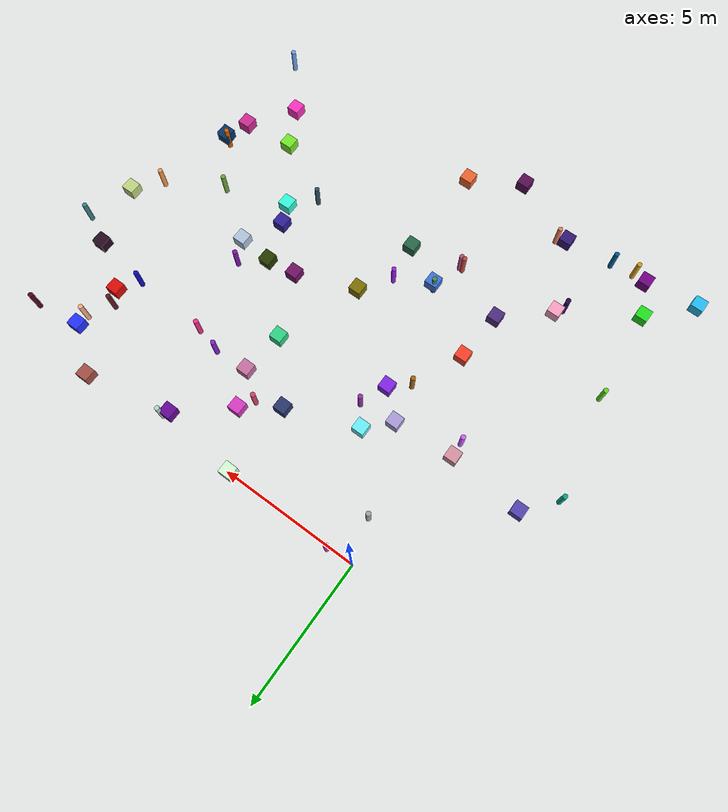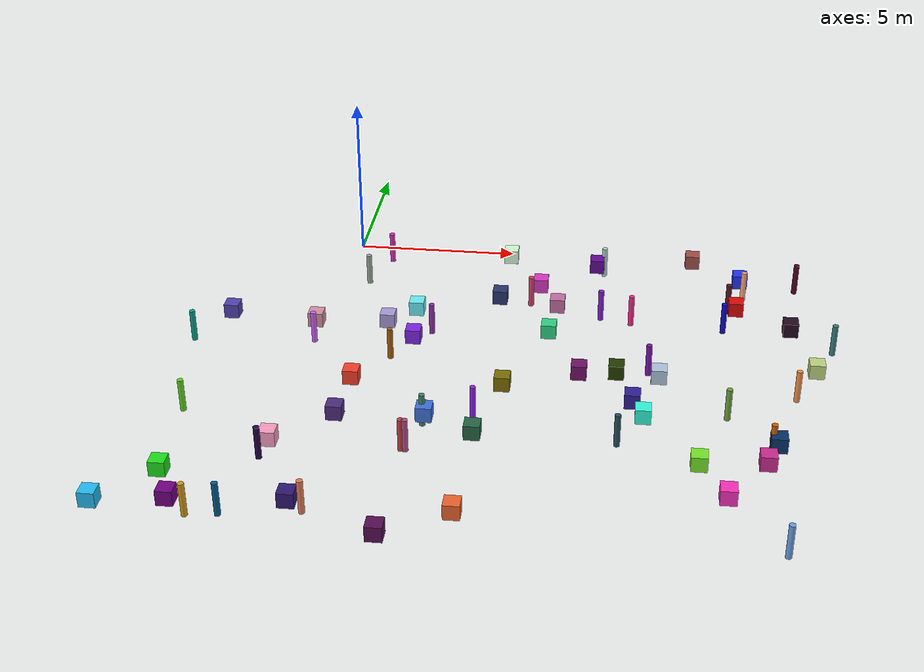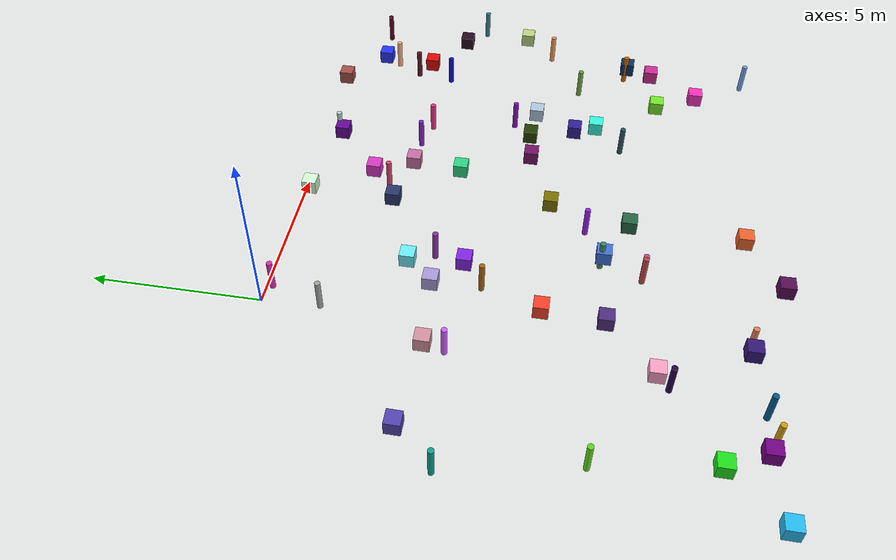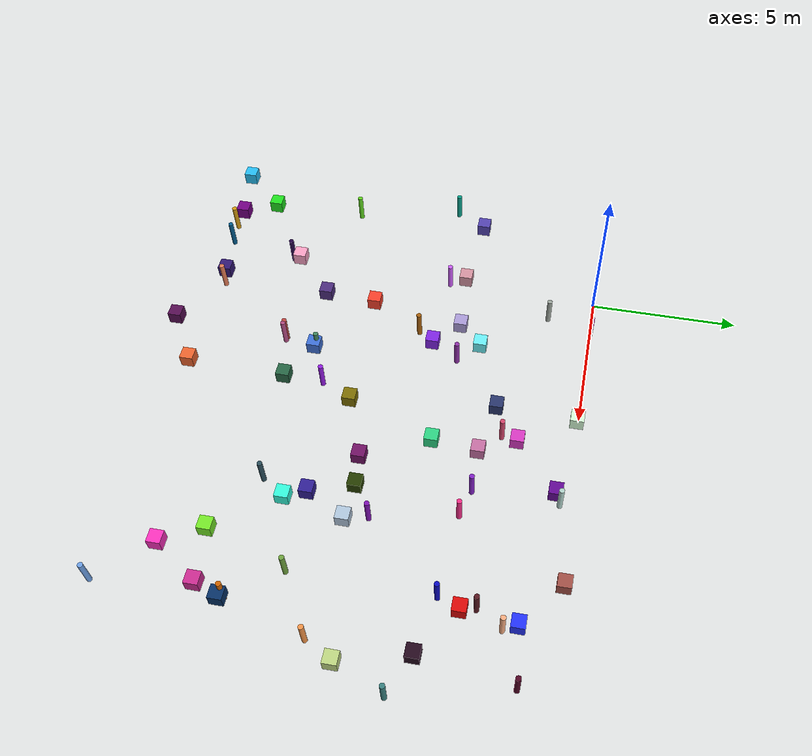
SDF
<sdf version="1.7">
 <world name="warehouse">
  <model name="ground_plane">
   <static>true</static>
   <link name="link">
    <collision name="collision">
     <geometry><plane><normal>0.0 0.0 1</normal><size>1 1</size></plane></geometry>
    </collision>
   </link>
  </model>
  <model name="unit_box_3">
   <static>true</static>
   <pose>10.89 -10.85 0 0 0 0</pose>
   <link name="link">
    <collision name="collision">
     <geometry><box><size>0.450000 0.450000 0.450000</size></box></geometry>
    </collision>
    <visual name="visual">
     <geometry><box><size>0.450000 0.450000 0.450000</size></box></geometry>
     <material>
      <ambient>0.4624867590474331 0.9143126628185029 0.1579698359249163 1</ambient>
      <diffuse>0.4624867590474331 0.9143126628185029 0.1579698359249163 1</diffuse>
      <script><uri>file://media/materials/scripts/gazebo.material</uri><name>Gazebo/RandomColor3</name></script>
     </material>
    </visual>
   </link>
  </model>
  <model name="unit_cylinder_3">
   <static>true</static>
   <pose>14.11 -0.75 0 0 0 0</pose>
   <link name="link">
    <collision name="collision">
     <geometry><cylinder><radius>0.085000</radius><length>1.000000</length></cylinder></geometry>
    </collision>
    <visual name="visual">
     <geometry><cylinder><radius>0.085000</radius><length>1.000000</length></cylinder></geometry>
     <material>
      <ambient>0.31413875885268494 0.01794644405934065 0.1373584163908963 1</ambient>
      <diffuse>0.31413875885268494 0.01794644405934065 0.1373584163908963 1</diffuse>
      <script><uri>file://media/materials/scripts/gazebo.material</uri><name>Gazebo/RandomColor3</name></script>
     </material>
    </visual>
   </link>
  </model>
  <model name="unit_box_9">
   <static>true</static>
   <pose>8.6 -6.69 0 0 0 0</pose>
   <link name="link">
    <collision name="collision">
     <geometry><box><size>0.450000 0.450000 0.450000</size></box></geometry>
    </collision>
    <visual name="visual">
     <geometry><box><size>0.450000 0.450000 0.450000</size></box></geometry>
     <material>
      <ambient>0.14614154093612663 0.23697075493477127 0.0011599974244516087 1</ambient>
      <diffuse>0.14614154093612663 0.23697075493477127 0.0011599974244516087 1</diffuse>
      <script><uri>file://media/materials/scripts/gazebo.material</uri><name>Gazebo/RandomColor9</name></script>
     </material>
    </visual>
   </link>
  </model>
  <model name="unit_box_11">
   <static>true</static>
   <pose>4.73 -13.51 0 0 0 0</pose>
   <link name="link">
    <collision name="collision">
     <geometry><box><size>0.450000 0.450000 0.450000</size></box></geometry>
    </collision>
    <visual name="visual">
     <geometry><box><size>0.450000 0.450000 0.450000</size></box></geometry>
     <material>
      <ambient>0.9340203933268564 0.39520919700550494 0.18268924808897258 1</ambient>
      <diffuse>0.9340203933268564 0.39520919700550494 0.18268924808897258 1</diffuse>
      <script><uri>file://media/materials/scripts/gazebo.material</uri><name>Gazebo/RandomColor11</name></script>
     </material>
    </visual>
   </link>
  </model>
  <model name="unit_box_12">
   <static>true</static>
   <pose>10.86 0.2 0 0 0 0</pose>
   <link name="link">
    <collision name="collision">
     <geometry><box><size>0.450000 0.450000 0.450000</size></box></geometry>
    </collision>
    <visual name="visual">
     <geometry><box><size>0.450000 0.450000 0.450000</size></box></geometry>
     <material>
      <ambient>0.6375677313072791 0.31348500282331193 0.27738088615342893 1</ambient>
      <diffuse>0.6375677313072791 0.31348500282331193 0.27738088615342893 1</diffuse>
      <script><uri>file://media/materials/scripts/gazebo.material</uri><name>Gazebo/RandomColor12</name></script>
     </material>
    </visual>
   </link>
  </model>
  <model name="unit_box_18">
   <static>true</static>
   <pose>4.83 -10.08 0 0 0 0</pose>
   <link name="link">
    <collision name="collision">
     <geometry><box><size>0.450000 0.450000 0.450000</size></box></geometry>
    </collision>
    <visual name="visual">
     <geometry><box><size>0.450000 0.450000 0.450000</size></box></geometry>
     <material>
      <ambient>0.15213708138282123 0.401753758546899 0.2688642279360097 1</ambient>
      <diffuse>0.15213708138282123 0.401753758546899 0.2688642279360097 1</diffuse>
      <script><uri>file://media/materials/scripts/gazebo.material</uri><name>Gazebo/RandomColor18</name></script>
     </material>
    </visual>
   </link>
  </model>
  <model name="unit_cylinder_18">
   <static>true</static>
   <pose>0.88 -13.47 0 0 0 0</pose>
   <link name="link">
    <collision name="collision">
     <geometry><cylinder><radius>0.085000</radius><length>1.000000</length></cylinder></geometry>
    </collision>
    <visual name="visual">
     <geometry><cylinder><radius>0.085000</radius><length>1.000000</length></cylinder></geometry>
     <material>
      <ambient>0.889661844785997 0.4847488373577973 0.3384738342592306 1</ambient>
      <diffuse>0.889661844785997 0.4847488373577973 0.3384738342592306 1</diffuse>
      <script><uri>file://media/materials/scripts/gazebo.material</uri><name>Gazebo/RandomColor18</name></script>
     </material>
    </visual>
   </link>
  </model>
  <model name="unit_box_19">
   <static>true</static>
   <pose>-0.58 -4.69 0 0 0 0</pose>
   <link name="link">
    <collision name="collision">
     <geometry><box><size>0.450000 0.450000 0.450000</size></box></geometry>
    </collision>
    <visual name="visual">
     <geometry><box><size>0.450000 0.450000 0.450000</size></box></geometry>
     <material>
      <ambient>0.8342006538471091 0.5773219657345021 0.6333201078097498 1</ambient>
      <diffuse>0.8342006538471091 0.5773219657345021 0.6333201078097498 1</diffuse>
      <script><uri>file://media/materials/scripts/gazebo.material</uri><name>Gazebo/RandomColor19</name></script>
     </material>
    </visual>
   </link>
  </model>
  <model name="unit_cylinder_19">
   <static>true</static>
   <pose>8.95 -3.3 0 0 0 0</pose>
   <link name="link">
    <collision name="collision">
     <geometry><cylinder><radius>0.085000</radius><length>1.000000</length></cylinder></geometry>
    </collision>
    <visual name="visual">
     <geometry><cylinder><radius>0.085000</radius><length>1.000000</length></cylinder></geometry>
     <material>
      <ambient>0.9456553254621518 0.16936506476351731 0.5296005652481653 1</ambient>
      <diffuse>0.9456553254621518 0.16936506476351731 0.5296005652481653 1</diffuse>
      <script><uri>file://media/materials/scripts/gazebo.material</uri><name>Gazebo/RandomColor19</name></script>
     </material>
    </visual>
   </link>
  </model>
  <model name="unit_box_21">
   <static>true</static>
   <pose>7.79 -0.42 0 0 0 0</pose>
   <link name="link">
    <collision name="collision">
     <geometry><box><size>0.450000 0.450000 0.450000</size></box></geometry>
    </collision>
    <visual name="visual">
     <geometry><box><size>0.450000 0.450000 0.450000</size></box></geometry>
     <material>
      <ambient>0.38801801391914703 0.03405274313850837 0.5868825694169122 1</ambient>
      <diffuse>0.38801801391914703 0.03405274313850837 0.5868825694169122 1</diffuse>
      <script><uri>file://media/materials/scripts/gazebo.material</uri><name>Gazebo/RandomColor21</name></script>
     </material>
    </visual>
   </link>
  </model>
  <model name="unit_box_23">
   <static>true</static>
   <pose>-3.25 -4.45 0 0 0 0</pose>
   <link name="link">
    <collision name="collision">
     <geometry><box><size>0.450000 0.450000 0.450000</size></box></geometry>
    </collision>
    <visual name="visual">
     <geometry><box><size>0.450000 0.450000 0.450000</size></box></geometry>
     <material>
      <ambient>0.326988515492164 0.266446417908078 0.6975832602943213 1</ambient>
      <diffuse>0.326988515492164 0.266446417908078 0.6975832602943213 1</diffuse>
      <script><uri>file://media/materials/scripts/gazebo.material</uri><name>Gazebo/RandomColor23</name></script>
     </material>
    </visual>
   </link>
  </model>
  <model name="unit_cylinder_24">
   <static>true</static>
   <pose>-2.04 -13.9 0 0 0 0</pose>
   <link name="link">
    <collision name="collision">
     <geometry><cylinder><radius>0.085000</radius><length>1.000000</length></cylinder></geometry>
    </collision>
    <visual name="visual">
     <geometry><cylinder><radius>0.085000</radius><length>1.000000</length></cylinder></geometry>
     <material>
      <ambient>0.8292453268627052 0.6054682728197773 0.07312862907861306 1</ambient>
      <diffuse>0.8292453268627052 0.6054682728197773 0.07312862907861306 1</diffuse>
      <script><uri>file://media/materials/scripts/gazebo.material</uri><name>Gazebo/RandomColor24</name></script>
     </material>
    </visual>
   </link>
  </model>
  <model name="unit_box_25">
   <static>true</static>
   <pose>12.15 -2.73 0 0 0 0</pose>
   <link name="link">
    <collision name="collision">
     <geometry><box><size>0.450000 0.450000 0.450000</size></box></geometry>
    </collision>
    <visual name="visual">
     <geometry><box><size>0.450000 0.450000 0.450000</size></box></geometry>
     <material>
      <ambient>0.8692494964949719 0.03779436172145079 0.03194965988478493 1</ambient>
      <diffuse>0.8692494964949719 0.03779436172145079 0.03194965988478493 1</diffuse>
      <script><uri>file://media/materials/scripts/gazebo.material</uri><name>Gazebo/RandomColor25</name></script>
     </material>
    </visual>
   </link>
  </model>
  <model name="unit_cylinder_25">
   <static>true</static>
   <pose>0.48 -1.52 0 0 0 0</pose>
   <link name="link">
    <collision name="collision">
     <geometry><cylinder><radius>0.085000</radius><length>1.000000</length></cylinder></geometry>
    </collision>
    <visual name="visual">
     <geometry><cylinder><radius>0.085000</radius><length>1.000000</length></cylinder></geometry>
     <material>
      <ambient>0.6107865553815773 0.6437235294481034 0.6124658333225681 1</ambient>
      <diffuse>0.6107865553815773 0.6437235294481034 0.6124658333225681 1</diffuse>
      <script><uri>file://media/materials/scripts/gazebo.material</uri><name>Gazebo/RandomColor25</name></script>
     </material>
    </visual>
   </link>
  </model>
  <model name="unit_cylinder_26">
   <static>true</static>
   <pose>14.97 -4.39 0 0 0 0</pose>
   <link name="link">
    <collision name="collision">
     <geometry><cylinder><radius>0.085000</radius><length>1.000000</length></cylinder></geometry>
    </collision>
    <visual name="visual">
     <geometry><cylinder><radius>0.085000</radius><length>1.000000</length></cylinder></geometry>
     <material>
      <ambient>0.21813894036833092 0.5031524766580354 0.49754303737141214 1</ambient>
      <diffuse>0.21813894036833092 0.5031524766580354 0.49754303737141214 1</diffuse>
      <script><uri>file://media/materials/scripts/gazebo.material</uri><name>Gazebo/RandomColor26</name></script>
     </material>
    </visual>
   </link>
  </model>
  <model name="unit_box_27">
   <static>true</static>
   <pose>4.96 -0.04 0 0 0 0</pose>
   <link name="link">
    <collision name="collision">
     <geometry><box><size>0.450000 0.450000 0.450000</size></box></geometry>
    </collision>
    <visual name="visual">
     <geometry><box><size>0.450000 0.450000 0.450000</size></box></geometry>
     <material>
      <ambient>0.8486869016865819 0.9941956500694433 0.852067054914752 1</ambient>
      <diffuse>0.8486869016865819 0.9941956500694433 0.852067054914752 1</diffuse>
      <script><uri>file://media/materials/scripts/gazebo.material</uri><name>Gazebo/RandomColor27</name></script>
     </material>
    </visual>
   </link>
  </model>
  <model name="unit_cylinder_27">
   <static>true</static>
   <pose>8.01 -3.06 0 0 0 0</pose>
   <link name="link">
    <collision name="collision">
     <geometry><cylinder><radius>0.085000</radius><length>1.000000</length></cylinder></geometry>
    </collision>
    <visual name="visual">
     <geometry><cylinder><radius>0.085000</radius><length>1.000000</length></cylinder></geometry>
     <material>
      <ambient>0.5099441863754836 0.1291536698231901 0.7783231246136362 1</ambient>
      <diffuse>0.5099441863754836 0.1291536698231901 0.7783231246136362 1</diffuse>
      <script><uri>file://media/materials/scripts/gazebo.material</uri><name>Gazebo/RandomColor27</name></script>
     </material>
    </visual>
   </link>
  </model>
  <model name="unit_box_28">
   <static>true</static>
   <pose>13.02 -9.8 0 0 0 0</pose>
   <link name="link">
    <collision name="collision">
     <geometry><box><size>0.450000 0.450000 0.450000</size></box></geometry>
    </collision>
    <visual name="visual">
     <geometry><box><size>0.450000 0.450000 0.450000</size></box></geometry>
     <material>
      <ambient>0.02478765518445203 0.19437383636729533 0.4042443228060443 1</ambient>
      <diffuse>0.02478765518445203 0.19437383636729533 0.4042443228060443 1</diffuse>
      <script><uri>file://media/materials/scripts/gazebo.material</uri><name>Gazebo/RandomColor28</name></script>
     </material>
    </visual>
   </link>
  </model>
  <model name="unit_cylinder_32">
   <static>true</static>
   <pose>-3.43 -9.31 0 0 0 0</pose>
   <link name="link">
    <collision name="collision">
     <geometry><cylinder><radius>0.085000</radius><length>1.000000</length></cylinder></geometry>
    </collision>
    <visual name="visual">
     <geometry><cylinder><radius>0.085000</radius><length>1.000000</length></cylinder></geometry>
     <material>
      <ambient>0.3721312846937974 0.8366255710289031 0.12252694481777004 1</ambient>
      <diffuse>0.3721312846937974 0.8366255710289031 0.12252694481777004 1</diffuse>
      <script><uri>file://media/materials/scripts/gazebo.material</uri><name>Gazebo/RandomColor32</name></script>
     </material>
    </visual>
   </link>
  </model>
  <model name="unit_cylinder_33">
   <static>true</static>
   <pose>8.02 -0.24 0 0 0 0</pose>
   <link name="link">
    <collision name="collision">
     <geometry><cylinder><radius>0.085000</radius><length>1.000000</length></cylinder></geometry>
    </collision>
    <visual name="visual">
     <geometry><cylinder><radius>0.085000</radius><length>1.000000</length></cylinder></geometry>
     <material>
      <ambient>0.6910647032823861 0.826248076338902 0.796120389499575 1</ambient>
      <diffuse>0.6910647032823861 0.826248076338902 0.796120389499575 1</diffuse>
      <script><uri>file://media/materials/scripts/gazebo.material</uri><name>Gazebo/RandomColor33</name></script>
     </material>
    </visual>
   </link>
  </model>
  <model name="unit_box_36">
   <static>true</static>
   <pose>-0.57 -10.94 0 0 0 0</pose>
   <link name="link">
    <collision name="collision">
     <geometry><box><size>0.450000 0.450000 0.450000</size></box></geometry>
    </collision>
    <visual name="visual">
     <geometry><box><size>0.450000 0.450000 0.450000</size></box></geometry>
     <material>
      <ambient>0.9824571224320596 0.6335572762247712 0.7729079614466159 1</ambient>
      <diffuse>0.9824571224320596 0.6335572762247712 0.7729079614466159 1</diffuse>
      <script><uri>file://media/materials/scripts/gazebo.material</uri><name>Gazebo/RandomColor36</name></script>
     </material>
    </visual>
   </link>
  </model>
  <model name="unit_cylinder_36">
   <static>true</static>
   <pose>8.72 -9.72 0 0 0 0</pose>
   <link name="link">
    <collision name="collision">
     <geometry><cylinder><radius>0.085000</radius><length>1.000000</length></cylinder></geometry>
    </collision>
    <visual name="visual">
     <geometry><cylinder><radius>0.085000</radius><length>1.000000</length></cylinder></geometry>
     <material>
      <ambient>0.1672943437410489 0.3047983494194332 0.3580818258632714 1</ambient>
      <diffuse>0.1672943437410489 0.3047983494194332 0.3580818258632714 1</diffuse>
      <script><uri>file://media/materials/scripts/gazebo.material</uri><name>Gazebo/RandomColor36</name></script>
     </material>
    </visual>
   </link>
  </model>
  <model name="unit_cylinder_37">
   <static>true</static>
   <pose>3.35 -9.31 0 0 0 0</pose>
   <link name="link">
    <collision name="collision">
     <geometry><cylinder><radius>0.085000</radius><length>1.000000</length></cylinder></geometry>
    </collision>
    <visual name="visual">
     <geometry><cylinder><radius>0.085000</radius><length>1.000000</length></cylinder></geometry>
     <material>
      <ambient>0.25792876844707446 0.5261192219596559 0.3764692068972195 1</ambient>
      <diffuse>0.25792876844707446 0.5261192219596559 0.3764692068972195 1</diffuse>
      <script><uri>file://media/materials/scripts/gazebo.material</uri><name>Gazebo/RandomColor37</name></script>
     </material>
    </visual>
   </link>
  </model>
  <model name="unit_box_38">
   <static>true</static>
   <pose>12.34 -0.97 0 0 0 0</pose>
   <link name="link">
    <collision name="collision">
     <geometry><box><size>0.450000 0.450000 0.450000</size></box></geometry>
    </collision>
    <visual name="visual">
     <geometry><box><size>0.450000 0.450000 0.450000</size></box></geometry>
     <material>
      <ambient>0.13967602627044629 0.1998036602836053 0.9813920763062978 1</ambient>
      <diffuse>0.13967602627044629 0.1998036602836053 0.9813920763062978 1</diffuse>
      <script><uri>file://media/materials/scripts/gazebo.material</uri><name>Gazebo/RandomColor38</name></script>
     </material>
    </visual>
   </link>
  </model>
  <model name="unit_box_40">
   <static>true</static>
   <pose>-2.52 -13.72 0 0 0 0</pose>
   <link name="link">
    <collision name="collision">
     <geometry><box><size>0.450000 0.450000 0.450000</size></box></geometry>
    </collision>
    <visual name="visual">
     <geometry><box><size>0.450000 0.450000 0.450000</size></box></geometry>
     <material>
      <ambient>0.4502754782213523 0.0033203426167386363 0.5173502991902056 1</ambient>
      <diffuse>0.4502754782213523 0.0033203426167386363 0.5173502991902056 1</diffuse>
      <script><uri>file://media/materials/scripts/gazebo.material</uri><name>Gazebo/RandomColor40</name></script>
     </material>
    </visual>
   </link>
  </model>
  <model name="unit_cylinder_41">
   <static>true</static>
   <pose>-0.77 -11.31 0 0 0 0</pose>
   <link name="link">
    <collision name="collision">
     <geometry><cylinder><radius>0.085000</radius><length>1.000000</length></cylinder></geometry>
    </collision>
    <visual name="visual">
     <geometry><cylinder><radius>0.085000</radius><length>1.000000</length></cylinder></geometry>
     <material>
      <ambient>0.14159386115270722 0.01658253002968091 0.2713492972556275 1</ambient>
      <diffuse>0.14159386115270722 0.01658253002968091 0.2713492972556275 1</diffuse>
      <script><uri>file://media/materials/scripts/gazebo.material</uri><name>Gazebo/RandomColor41</name></script>
     </material>
    </visual>
   </link>
  </model>
  <model name="unit_box_43">
   <static>true</static>
   <pose>2.51 -5.36 0 0 0 0</pose>
   <link name="link">
    <collision name="collision">
     <geometry><box><size>0.450000 0.450000 0.450000</size></box></geometry>
    </collision>
    <visual name="visual">
     <geometry><box><size>0.450000 0.450000 0.450000</size></box></geometry>
     <material>
      <ambient>0.5015578921740694 0.14324663315828345 0.8948822264542908 1</ambient>
      <diffuse>0.5015578921740694 0.14324663315828345 0.8948822264542908 1</diffuse>
      <script><uri>file://media/materials/scripts/gazebo.material</uri><name>Gazebo/RandomColor43</name></script>
     </material>
    </visual>
   </link>
  </model>
  <model name="unit_cylinder_48">
   <static>true</static>
   <pose>3.07 -10.56 0 0 0 0</pose>
   <link name="link">
    <collision name="collision">
     <geometry><cylinder><radius>0.085000</radius><length>1.000000</length></cylinder></geometry>
    </collision>
    <visual name="visual">
     <geometry><cylinder><radius>0.085000</radius><length>1.000000</length></cylinder></geometry>
     <material>
      <ambient>0.7165557844969643 0.30511352326934704 0.5255030786230381 1</ambient>
      <diffuse>0.7165557844969643 0.30511352326934704 0.5255030786230381 1</diffuse>
      <script><uri>file://media/materials/scripts/gazebo.material</uri><name>Gazebo/RandomColor48</name></script>
     </material>
    </visual>
   </link>
  </model>
  <model name="unit_cylinder_49">
   <static>true</static>
   <pose>4.69 -8.79 0 0 0 0</pose>
   <link name="link">
    <collision name="collision">
     <geometry><cylinder><radius>0.085000</radius><length>1.000000</length></cylinder></geometry>
    </collision>
    <visual name="visual">
     <geometry><cylinder><radius>0.085000</radius><length>1.000000</length></cylinder></geometry>
     <material>
      <ambient>0.5787438655736662 0.10529384782344009 0.8914933726062343 1</ambient>
      <diffuse>0.5787438655736662 0.10529384782344009 0.8914933726062343 1</diffuse>
      <script><uri>file://media/materials/scripts/gazebo.material</uri><name>Gazebo/RandomColor49</name></script>
     </material>
    </visual>
   </link>
  </model>
  <model name="unit_box_50">
   <static>true</static>
   <pose>2.96 -14.55 0 0 0 0</pose>
   <link name="link">
    <collision name="collision">
     <geometry><box><size>0.450000 0.450000 0.450000</size></box></geometry>
    </collision>
    <visual name="visual">
     <geometry><box><size>0.450000 0.450000 0.450000</size></box></geometry>
     <material>
      <ambient>0.3371124151774617 0.0513314948140402 0.32470020432977176 1</ambient>
      <diffuse>0.3371124151774617 0.0513314948140402 0.32470020432977176 1</diffuse>
      <script><uri>file://media/materials/scripts/gazebo.material</uri><name>Gazebo/RandomColor50</name></script>
     </material>
    </visual>
   </link>
  </model>
  <model name="unit_box_51">
   <static>true</static>
   <pose>6.51 -4.64 0 0 0 0</pose>
   <link name="link">
    <collision name="collision">
     <geometry><box><size>0.450000 0.450000 0.450000</size></box></geometry>
    </collision>
    <visual name="visual">
     <geometry><box><size>0.450000 0.450000 0.450000</size></box></geometry>
     <material>
      <ambient>0.18061662655388233 0.8325592641645059 0.5192181855071093 1</ambient>
      <diffuse>0.18061662655388233 0.8325592641645059 0.5192181855071093 1</diffuse>
      <script><uri>file://media/materials/scripts/gazebo.material</uri><name>Gazebo/RandomColor51</name></script>
     </material>
    </visual>
   </link>
  </model>
  <model name="unit_cylinder_52">
   <static>true</static>
   <pose>-4.18 -5.57 0 0 0 0</pose>
   <link name="link">
    <collision name="collision">
     <geometry><cylinder><radius>0.085000</radius><length>1.000000</length></cylinder></geometry>
    </collision>
    <visual name="visual">
     <geometry><cylinder><radius>0.085000</radius><length>1.000000</length></cylinder></geometry>
     <material>
      <ambient>0.033597266219691724 0.6304464659484251 0.5472023994982452 1</ambient>
      <diffuse>0.033597266219691724 0.6304464659484251 0.5472023994982452 1</diffuse>
      <script><uri>file://media/materials/scripts/gazebo.material</uri><name>Gazebo/RandomColor52</name></script>
     </material>
    </visual>
   </link>
  </model>
  <model name="unit_box_53">
   <static>true</static>
   <pose>14.33 -6.03 0 0 0 0</pose>
   <link name="link">
    <collision name="collision">
     <geometry><box><size>0.450000 0.450000 0.450000</size></box></geometry>
    </collision>
    <visual name="visual">
     <geometry><box><size>0.450000 0.450000 0.450000</size></box></geometry>
     <material>
      <ambient>0.7475359441316373 0.8382611114257045 0.5108983686616976 1</ambient>
      <diffuse>0.7475359441316373 0.8382611114257045 0.5108983686616976 1</diffuse>
      <script><uri>file://media/materials/scripts/gazebo.material</uri><name>Gazebo/RandomColor53</name></script>
     </material>
    </visual>
   </link>
  </model>
  <model name="unit_cylinder_53">
   <static>true</static>
   <pose>1.9 -5.96 0 0 0 0</pose>
   <link name="link">
    <collision name="collision">
     <geometry><cylinder><radius>0.085000</radius><length>1.000000</length></cylinder></geometry>
    </collision>
    <visual name="visual">
     <geometry><cylinder><radius>0.085000</radius><length>1.000000</length></cylinder></geometry>
     <material>
      <ambient>0.6596777940997097 0.37998833407143984 0.054840331518383856 1</ambient>
      <diffuse>0.6596777940997097 0.37998833407143984 0.054840331518383856 1</diffuse>
      <script><uri>file://media/materials/scripts/gazebo.material</uri><name>Gazebo/RandomColor53</name></script>
     </material>
    </visual>
   </link>
  </model>
  <model name="unit_box_54">
   <static>true</static>
   <pose>-4.44 -13.99 0 0 0 0</pose>
   <link name="link">
    <collision name="collision">
     <geometry><box><size>0.450000 0.450000 0.450000</size></box></geometry>
    </collision>
    <visual name="visual">
     <geometry><box><size>0.450000 0.450000 0.450000</size></box></geometry>
     <material>
      <ambient>0.14646887676916664 0.746029174657591 0.9581812266760893 1</ambient>
      <diffuse>0.14646887676916664 0.746029174657591 0.9581812266760893 1</diffuse>
      <script><uri>file://media/materials/scripts/gazebo.material</uri><name>Gazebo/RandomColor54</name></script>
     </material>
    </visual>
   </link>
  </model>
  <model name="unit_cylinder_54">
   <static>true</static>
   <pose>-0.54 -5.28 0 0 0 0</pose>
   <link name="link">
    <collision name="collision">
     <geometry><cylinder><radius>0.085000</radius><length>1.000000</length></cylinder></geometry>
    </collision>
    <visual name="visual">
     <geometry><cylinder><radius>0.085000</radius><length>1.000000</length></cylinder></geometry>
     <material>
      <ambient>0.8172856834327115 0.3693135878926658 0.9974124948187749 1</ambient>
      <diffuse>0.8172856834327115 0.3693135878926658 0.9974124948187749 1</diffuse>
      <script><uri>file://media/materials/scripts/gazebo.material</uri><name>Gazebo/RandomColor54</name></script>
     </material>
    </visual>
   </link>
  </model>
  <model name="unit_cylinder_55">
   <static>true</static>
   <pose>5.8 -2.42 0 0 0 0</pose>
   <link name="link">
    <collision name="collision">
     <geometry><cylinder><radius>0.085000</radius><length>1.000000</length></cylinder></geometry>
    </collision>
    <visual name="visual">
     <geometry><cylinder><radius>0.085000</radius><length>1.000000</length></cylinder></geometry>
     <material>
      <ambient>0.8271443065869968 0.26311148277164165 0.4162998289364659 1</ambient>
      <diffuse>0.8271443065869968 0.26311148277164165 0.4162998289364659 1</diffuse>
      <script><uri>file://media/materials/scripts/gazebo.material</uri><name>Gazebo/RandomColor55</name></script>
     </material>
    </visual>
   </link>
  </model>
  <model name="unit_cylinder_56">
   <static>true</static>
   <pose>9.52 -6.08 0 0 0 0</pose>
   <link name="link">
    <collision name="collision">
     <geometry><cylinder><radius>0.085000</radius><length>1.000000</length></cylinder></geometry>
    </collision>
    <visual name="visual">
     <geometry><cylinder><radius>0.085000</radius><length>1.000000</length></cylinder></geometry>
     <material>
      <ambient>0.49618592110400916 0.07093142319876 0.7012748725010843 1</ambient>
      <diffuse>0.49618592110400916 0.07093142319876 0.7012748725010843 1</diffuse>
      <script><uri>file://media/materials/scripts/gazebo.material</uri><name>Gazebo/RandomColor56</name></script>
     </material>
    </visual>
   </link>
  </model>
  <model name="unit_box_57">
   <static>true</static>
   <pose>5.4 -7.64 0 0 0 0</pose>
   <link name="link">
    <collision name="collision">
     <geometry><box><size>0.450000 0.450000 0.450000</size></box></geometry>
    </collision>
    <visual name="visual">
     <geometry><box><size>0.450000 0.450000 0.450000</size></box></geometry>
     <material>
      <ambient>0.49484015422541605 0.4392646393046623 0.015599898815628954 1</ambient>
      <diffuse>0.49484015422541605 0.4392646393046623 0.015599898815628954 1</diffuse>
      <script><uri>file://media/materials/scripts/gazebo.material</uri><name>Gazebo/RandomColor57</name></script>
     </material>
    </visual>
   </link>
  </model>
  <model name="unit_cylinder_58">
   <static>true</static>
   <pose>13.73 -7.02 0 0 0 0</pose>
   <link name="link">
    <collision name="collision">
     <geometry><cylinder><radius>0.085000</radius><length>1.000000</length></cylinder></geometry>
    </collision>
    <visual name="visual">
     <geometry><cylinder><radius>0.085000</radius><length>1.000000</length></cylinder></geometry>
     <material>
      <ambient>0.9464264906110739 0.576431048724635 0.2789632797133764 1</ambient>
      <diffuse>0.9464264906110739 0.576431048724635 0.2789632797133764 1</diffuse>
      <script><uri>file://media/materials/scripts/gazebo.material</uri><name>Gazebo/RandomColor58</name></script>
     </material>
    </visual>
   </link>
  </model>
  <model name="unit_box_59">
   <static>true</static>
   <pose>1.08 -7.74 0 0 0 0</pose>
   <link name="link">
    <collision name="collision">
     <geometry><box><size>0.450000 0.450000 0.450000</size></box></geometry>
    </collision>
    <visual name="visual">
     <geometry><box><size>0.450000 0.450000 0.450000</size></box></geometry>
     <material>
      <ambient>0.9721848871084022 0.2533672088179345 0.16507847031934642 1</ambient>
      <diffuse>0.9721848871084022 0.2533672088179345 0.16507847031934642 1</diffuse>
      <script><uri>file://media/materials/scripts/gazebo.material</uri><name>Gazebo/RandomColor59</name></script>
     </material>
    </visual>
   </link>
  </model>
  <model name="unit_cylinder_60">
   <static>true</static>
   <pose>-1.21 -13.79 0 0 0 0</pose>
   <link name="link">
    <collision name="collision">
     <geometry><cylinder><radius>0.085000</radius><length>1.000000</length></cylinder></geometry>
    </collision>
    <visual name="visual">
     <geometry><cylinder><radius>0.085000</radius><length>1.000000</length></cylinder></geometry>
     <material>
      <ambient>0.004367440206406448 0.35536976987313973 0.5529063385733172 1</ambient>
      <diffuse>0.004367440206406448 0.35536976987313973 0.5529063385733172 1</diffuse>
      <script><uri>file://media/materials/scripts/gazebo.material</uri><name>Gazebo/RandomColor60</name></script>
     </material>
    </visual>
   </link>
  </model>
  <model name="unit_box_63">
   <static>true</static>
   <pose>0.96 -9.55 0 0 0 0</pose>
   <link name="link">
    <collision name="collision">
     <geometry><box><size>0.450000 0.450000 0.450000</size></box></geometry>
    </collision>
    <visual name="visual">
     <geometry><box><size>0.450000 0.450000 0.450000</size></box></geometry>
     <material>
      <ambient>0.3002461166697413 0.17727362422313997 0.4942248483692083 1</ambient>
      <diffuse>0.3002461166697413 0.17727362422313997 0.4942248483692083 1</diffuse>
      <script><uri>file://media/materials/scripts/gazebo.material</uri><name>Gazebo/RandomColor63</name></script>
     </material>
    </visual>
   </link>
  </model>
  <model name="unit_box_64">
   <static>true</static>
   <pose>12.69 -10.64 0 0 0 0</pose>
   <link name="link">
    <collision name="collision">
     <geometry><box><size>0.450000 0.450000 0.450000</size></box></geometry>
    </collision>
    <visual name="visual">
     <geometry><box><size>0.450000 0.450000 0.450000</size></box></geometry>
     <material>
      <ambient>0.8027406423183407 0.17041894028340487 0.5740614320246962 1</ambient>
      <diffuse>0.8027406423183407 0.17041894028340487 0.5740614320246962 1</diffuse>
      <script><uri>file://media/materials/scripts/gazebo.material</uri><name>Gazebo/RandomColor64</name></script>
     </material>
    </visual>
   </link>
  </model>
  <model name="unit_cylinder_65">
   <static>true</static>
   <pose>12.44 -1.42 0 0 0 0</pose>
   <link name="link">
    <collision name="collision">
     <geometry><cylinder><radius>0.085000</radius><length>1.000000</length></cylinder></geometry>
    </collision>
    <visual name="visual">
     <geometry><cylinder><radius>0.085000</radius><length>1.000000</length></cylinder></geometry>
     <material>
      <ambient>0.9664668887663515 0.6787775662655414 0.5067513130163374 1</ambient>
      <diffuse>0.9664668887663515 0.6787775662655414 0.5067513130163374 1</diffuse>
      <script><uri>file://media/materials/scripts/gazebo.material</uri><name>Gazebo/RandomColor65</name></script>
     </material>
    </visual>
   </link>
  </model>
  <model name="unit_cylinder_66">
   <static>true</static>
   <pose>0.98 0.03 0 0 0 0</pose>
   <link name="link">
    <collision name="collision">
     <geometry><cylinder><radius>0.085000</radius><length>1.000000</length></cylinder></geometry>
    </collision>
    <visual name="visual">
     <geometry><cylinder><radius>0.085000</radius><length>1.000000</length></cylinder></geometry>
     <material>
      <ambient>0.87522183348222 0.17262806162035427 0.7036432312220136 1</ambient>
      <diffuse>0.87522183348222 0.17262806162035427 0.7036432312220136 1</diffuse>
      <script><uri>file://media/materials/scripts/gazebo.material</uri><name>Gazebo/RandomColor66</name></script>
     </material>
    </visual>
   </link>
  </model>
  <model name="unit_box_68">
   <static>true</static>
   <pose>4.86 -2.75 0 0 0 0</pose>
   <link name="link">
    <collision name="collision">
     <geometry><box><size>0.450000 0.450000 0.450000</size></box></geometry>
    </collision>
    <visual name="visual">
     <geometry><box><size>0.450000 0.450000 0.450000</size></box></geometry>
     <material>
      <ambient>0.16212415159612414 0.21237588160571574 0.42612387500757387 1</ambient>
      <diffuse>0.16212415159612414 0.21237588160571574 0.42612387500757387 1</diffuse>
      <script><uri>file://media/materials/scripts/gazebo.material</uri><name>Gazebo/RandomColor68</name></script>
     </material>
    </visual>
   </link>
  </model>
  <model name="unit_box_70">
   <static>true</static>
   <pose>3.42 -9.38 0 0 0 0</pose>
   <link name="link">
    <collision name="collision">
     <geometry><box><size>0.450000 0.450000 0.450000</size></box></geometry>
    </collision>
    <visual name="visual">
     <geometry><box><size>0.450000 0.450000 0.450000</size></box></geometry>
     <material>
      <ambient>0.24564751440326682 0.44712101440158525 0.8482914474760771 1</ambient>
      <diffuse>0.24564751440326682 0.44712101440158525 0.8482914474760771 1</diffuse>
      <script><uri>file://media/materials/scripts/gazebo.material</uri><name>Gazebo/RandomColor70</name></script>
     </material>
    </visual>
   </link>
  </model>
  <model name="unit_box_71">
   <static>true</static>
   <pose>6.07 -1.88 0 0 0 0</pose>
   <link name="link">
    <collision name="collision">
     <geometry><box><size>0.450000 0.450000 0.450000</size></box></geometry>
    </collision>
    <visual name="visual">
     <geometry><box><size>0.450000 0.450000 0.450000</size></box></geometry>
     <material>
      <ambient>0.8488430138479518 0.22440456373686002 0.7647567660905699 1</ambient>
      <diffuse>0.8488430138479518 0.22440456373686002 0.7647567660905699 1</diffuse>
      <script><uri>file://media/materials/scripts/gazebo.material</uri><name>Gazebo/RandomColor71</name></script>
     </material>
    </visual>
   </link>
  </model>
  <model name="unit_cylinder_71">
   <static>true</static>
   <pose>2.93 -4.43 0 0 0 0</pose>
   <link name="link">
    <collision name="collision">
     <geometry><cylinder><radius>0.085000</radius><length>1.000000</length></cylinder></geometry>
    </collision>
    <visual name="visual">
     <geometry><cylinder><radius>0.085000</radius><length>1.000000</length></cylinder></geometry>
     <material>
      <ambient>0.5579829486331715 0.18364805604674006 0.6536571355249118 1</ambient>
      <diffuse>0.5579829486331715 0.18364805604674006 0.6536571355249118 1</diffuse>
      <script><uri>file://media/materials/scripts/gazebo.material</uri><name>Gazebo/RandomColor71</name></script>
     </material>
    </visual>
   </link>
  </model>
  <model name="unit_box_74">
   <static>true</static>
   <pose>9.4 -8.83 0 0 0 0</pose>
   <link name="link">
    <collision name="collision">
     <geometry><box><size>0.450000 0.450000 0.450000</size></box></geometry>
    </collision>
    <visual name="visual">
     <geometry><box><size>0.450000 0.450000 0.450000</size></box></geometry>
     <material>
      <ambient>0.2052509531759371 0.9805949386948292 0.86338103954366 1</ambient>
      <diffuse>0.2052509531759371 0.9805949386948292 0.86338103954366 1</diffuse>
      <script><uri>file://media/materials/scripts/gazebo.material</uri><name>Gazebo/RandomColor74</name></script>
     </material>
    </visual>
   </link>
  </model>
  <model name="unit_cylinder_74">
   <static>true</static>
   <pose>11.94 -2.26 0 0 0 0</pose>
   <link name="link">
    <collision name="collision">
     <geometry><cylinder><radius>0.085000</radius><length>1.000000</length></cylinder></geometry>
    </collision>
    <visual name="visual">
     <geometry><cylinder><radius>0.085000</radius><length>1.000000</length></cylinder></geometry>
     <material>
      <ambient>0.34648350384802995 0.09577063354527104 0.1285446057458346 1</ambient>
      <diffuse>0.34648350384802995 0.09577063354527104 0.1285446057458346 1</diffuse>
      <script><uri>file://media/materials/scripts/gazebo.material</uri><name>Gazebo/RandomColor74</name></script>
     </material>
    </visual>
   </link>
  </model>
  <model name="unit_box_75">
   <static>true</static>
   <pose>9.09 -8.13 0 0 0 0</pose>
   <link name="link">
    <collision name="collision">
     <geometry><box><size>0.450000 0.450000 0.450000</size></box></geometry>
    </collision>
    <visual name="visual">
     <geometry><box><size>0.450000 0.450000 0.450000</size></box></geometry>
     <material>
      <ambient>0.18920928811872872 0.11896624230014419 0.5876040055256023 1</ambient>
      <diffuse>0.18920928811872872 0.11896624230014419 0.5876040055256023 1</diffuse>
      <script><uri>file://media/materials/scripts/gazebo.material</uri><name>Gazebo/RandomColor75</name></script>
     </material>
    </visual>
   </link>
  </model>
  <model name="unit_cylinder_75">
   <static>true</static>
   <pose>11.76 -3.47 0 0 0 0</pose>
   <link name="link">
    <collision name="collision">
     <geometry><cylinder><radius>0.085000</radius><length>1.000000</length></cylinder></geometry>
    </collision>
    <visual name="visual">
     <geometry><cylinder><radius>0.085000</radius><length>1.000000</length></cylinder></geometry>
     <material>
      <ambient>0.045887243533680344 0.0450248211981763 0.7713091757357183 1</ambient>
      <diffuse>0.045887243533680344 0.0450248211981763 0.7713091757357183 1</diffuse>
      <script><uri>file://media/materials/scripts/gazebo.material</uri><name>Gazebo/RandomColor75</name></script>
     </material>
    </visual>
   </link>
  </model>
  <model name="unit_box_79">
   <static>true</static>
   <pose>7.53 -6.82 0 0 0 0</pose>
   <link name="link">
    <collision name="collision">
     <geometry><box><size>0.450000 0.450000 0.450000</size></box></geometry>
    </collision>
    <visual name="visual">
     <geometry><box><size>0.450000 0.450000 0.450000</size></box></geometry>
     <material>
      <ambient>0.4423257557023681 0.06966688566341461 0.3975736045634124 1</ambient>
      <diffuse>0.4423257557023681 0.06966688566341461 0.3975736045634124 1</diffuse>
      <script><uri>file://media/materials/scripts/gazebo.material</uri><name>Gazebo/RandomColor79</name></script>
     </material>
    </visual>
   </link>
  </model>
  <model name="unit_cylinder_81">
   <static>true</static>
   <pose>11.74 -8.15 0 0 0 0</pose>
   <link name="link">
    <collision name="collision">
     <geometry><cylinder><radius>0.085000</radius><length>1.000000</length></cylinder></geometry>
    </collision>
    <visual name="visual">
     <geometry><cylinder><radius>0.085000</radius><length>1.000000</length></cylinder></geometry>
     <material>
      <ambient>0.4344811692707765 0.6347406312361464 0.24363971169225973 1</ambient>
      <diffuse>0.4344811692707765 0.6347406312361464 0.24363971169225973 1</diffuse>
      <script><uri>file://media/materials/scripts/gazebo.material</uri><name>Gazebo/RandomColor81</name></script>
     </material>
    </visual>
   </link>
  </model>
  <model name="unit_box_85">
   <static>true</static>
   <pose>1.6 -4.52 0 0 0 0</pose>
   <link name="link">
    <collision name="collision">
     <geometry><box><size>0.450000 0.450000 0.450000</size></box></geometry>
    </collision>
    <visual name="visual">
     <geometry><box><size>0.450000 0.450000 0.450000</size></box></geometry>
     <material>
      <ambient>0.6672948525947905 0.6104877603843302 0.8468183064381162 1</ambient>
      <diffuse>0.6672948525947905 0.6104877603843302 0.8468183064381162 1</diffuse>
      <script><uri>file://media/materials/scripts/gazebo.material</uri><name>Gazebo/RandomColor85</name></script>
     </material>
    </visual>
   </link>
  </model>
  <model name="unit_box_86">
   <static>true</static>
   <pose>-3.08 -12.55 0 0 0 0</pose>
   <link name="link">
    <collision name="collision">
     <geometry><box><size>0.450000 0.450000 0.450000</size></box></geometry>
    </collision>
    <visual name="visual">
     <geometry><box><size>0.450000 0.450000 0.450000</size></box></geometry>
     <material>
      <ambient>0.12531659822907049 0.8870608139936605 0.11995070791698492 1</ambient>
      <diffuse>0.12531659822907049 0.8870608139936605 0.11995070791698492 1</diffuse>
      <script><uri>file://media/materials/scripts/gazebo.material</uri><name>Gazebo/RandomColor86</name></script>
     </material>
    </visual>
   </link>
  </model>
  <model name="unit_cylinder_88">
   <static>true</static>
   <pose>13.02 -13.91 0 0 0 0</pose>
   <link name="link">
    <collision name="collision">
     <geometry><cylinder><radius>0.085000</radius><length>1.000000</length></cylinder></geometry>
    </collision>
    <visual name="visual">
     <geometry><cylinder><radius>0.085000</radius><length>1.000000</length></cylinder></geometry>
     <material>
      <ambient>0.42373287419512584 0.6271754542232093 0.8996423022960477 1</ambient>
      <diffuse>0.42373287419512584 0.6271754542232093 0.8996423022960477 1</diffuse>
      <script><uri>file://media/materials/scripts/gazebo.material</uri><name>Gazebo/RandomColor88</name></script>
     </material>
    </visual>
   </link>
  </model>
  <model name="unit_box_89">
   <static>true</static>
   <pose>0.53 -13.49 0 0 0 0</pose>
   <link name="link">
    <collision name="collision">
     <geometry><box><size>0.450000 0.450000 0.450000</size></box></geometry>
    </collision>
    <visual name="visual">
     <geometry><box><size>0.450000 0.450000 0.450000</size></box></geometry>
     <material>
      <ambient>0.19332181791422343 0.09236686904266111 0.45598645728021914 1</ambient>
      <diffuse>0.19332181791422343 0.09236686904266111 0.45598645728021914 1</diffuse>
      <script><uri>file://media/materials/scripts/gazebo.material</uri><name>Gazebo/RandomColor89</name></script>
     </material>
    </visual>
   </link>
  </model>
  <model name="unit_cylinder_89">
   <static>true</static>
   <pose>12.87 -9.73 0 0 0 0</pose>
   <link name="link">
    <collision name="collision">
     <geometry><cylinder><radius>0.085000</radius><length>1.000000</length></cylinder></geometry>
    </collision>
    <visual name="visual">
     <geometry><cylinder><radius>0.085000</radius><length>1.000000</length></cylinder></geometry>
     <material>
      <ambient>0.8050794132360566 0.38561728162455033 4.084321794439738e-06 1</ambient>
      <diffuse>0.8050794132360566 0.38561728162455033 4.084321794439738e-06 1</diffuse>
      <script><uri>file://media/materials/scripts/gazebo.material</uri><name>Gazebo/RandomColor89</name></script>
     </material>
    </visual>
   </link>
  </model>
  <model name="unit_box_90">
   <static>true</static>
   <pose>9.82 -6.79 0 0 0 0</pose>
   <link name="link">
    <collision name="collision">
     <geometry><box><size>0.450000 0.450000 0.450000</size></box></geometry>
    </collision>
    <visual name="visual">
     <geometry><box><size>0.450000 0.450000 0.450000</size></box></geometry>
     <material>
      <ambient>0.6932071626776992 0.7798030234285533 0.8676856229378745 1</ambient>
      <diffuse>0.6932071626776992 0.7798030234285533 0.8676856229378745 1</diffuse>
      <script><uri>file://media/materials/scripts/gazebo.material</uri><name>Gazebo/RandomColor90</name></script>
     </material>
    </visual>
   </link>
  </model>
  <model name="unit_cylinder_90">
   <static>true</static>
   <pose>2.95 -10.55 0 0 0 0</pose>
   <link name="link">
    <collision name="collision">
     <geometry><cylinder><radius>0.085000</radius><length>1.000000</length></cylinder></geometry>
    </collision>
    <visual name="visual">
     <geometry><cylinder><radius>0.085000</radius><length>1.000000</length></cylinder></geometry>
     <material>
      <ambient>0.7400630414005686 0.27201480263153754 0.2564602130817132 1</ambient>
      <diffuse>0.7400630414005686 0.27201480263153754 0.2564602130817132 1</diffuse>
      <script><uri>file://media/materials/scripts/gazebo.material</uri><name>Gazebo/RandomColor90</name></script>
     </material>
    </visual>
   </link>
  </model>
  <model name="unit_box_92">
   <static>true</static>
   <pose>2.37 -3.7 0 0 0 0</pose>
   <link name="link">
    <collision name="collision">
     <geometry><box><size>0.450000 0.450000 0.450000</size></box></geometry>
    </collision>
    <visual name="visual">
     <geometry><box><size>0.450000 0.450000 0.450000</size></box></geometry>
     <material>
      <ambient>0.41938615982358396 0.9403530912769351 0.9723078672755152 1</ambient>
      <diffuse>0.41938615982358396 0.9403530912769351 0.9723078672755152 1</diffuse>
      <script><uri>file://media/materials/scripts/gazebo.material</uri><name>Gazebo/RandomColor92</name></script>
     </material>
    </visual>
   </link>
  </model>
  <model name="unit_box_93">
   <static>true</static>
   <pose>13.74 -3.79 0 0 0 0</pose>
   <link name="link">
    <collision name="collision">
     <geometry><box><size>0.450000 0.450000 0.450000</size></box></geometry>
    </collision>
    <visual name="visual">
     <geometry><box><size>0.450000 0.450000 0.450000</size></box></geometry>
     <material>
      <ambient>0.1457968505617847 0.04144634657755597 0.11933899839306761 1</ambient>
      <diffuse>0.1457968505617847 0.04144634657755597 0.11933899839306761 1</diffuse>
      <script><uri>file://media/materials/scripts/gazebo.material</uri><name>Gazebo/RandomColor93</name></script>
     </material>
    </visual>
   </link>
  </model>
  <model name="unit_box_94">
   <static>true</static>
   <pose>6.67 -3.08 0 0 0 0</pose>
   <link name="link">
    <collision name="collision">
     <geometry><box><size>0.450000 0.450000 0.450000</size></box></geometry>
    </collision>
    <visual name="visual">
     <geometry><box><size>0.450000 0.450000 0.450000</size></box></geometry>
     <material>
      <ambient>0.775378573626127 0.4386574865278232 0.6422403146006608 1</ambient>
      <diffuse>0.775378573626127 0.4386574865278232 0.6422403146006608 1</diffuse>
      <script><uri>file://media/materials/scripts/gazebo.material</uri><name>Gazebo/RandomColor94</name></script>
     </material>
    </visual>
   </link>
  </model>
  <model name="unit_box_98">
   <static>true</static>
   <pose>11.6 -12.19 0 0 0 0</pose>
   <link name="link">
    <collision name="collision">
     <geometry><box><size>0.450000 0.450000 0.450000</size></box></geometry>
    </collision>
    <visual name="visual">
     <geometry><box><size>0.450000 0.450000 0.450000</size></box></geometry>
     <material>
      <ambient>0.9830834570566908 0.19272504433618498 0.7440795573968055 1</ambient>
      <diffuse>0.9830834570566908 0.19272504433618498 0.7440795573968055 1</diffuse>
      <script><uri>file://media/materials/scripts/gazebo.material</uri><name>Gazebo/RandomColor98</name></script>
     </material>
    </visual>
   </link>
  </model>
 </world>
</sdf>
